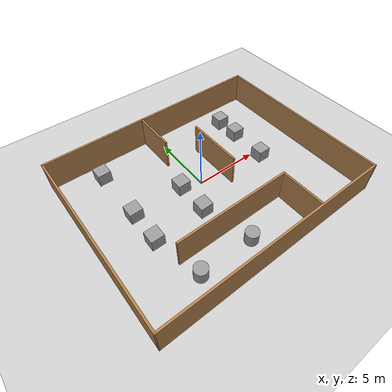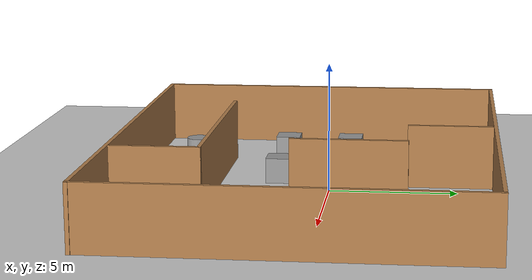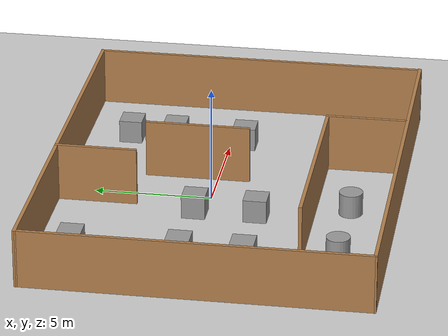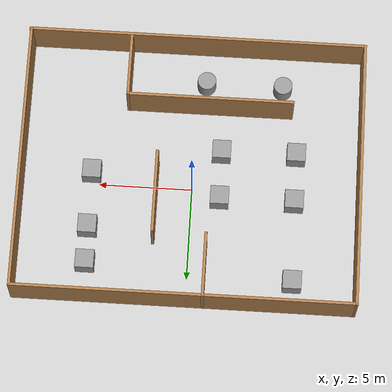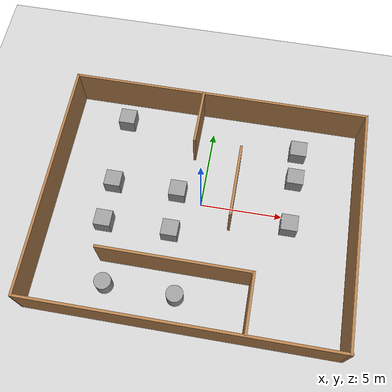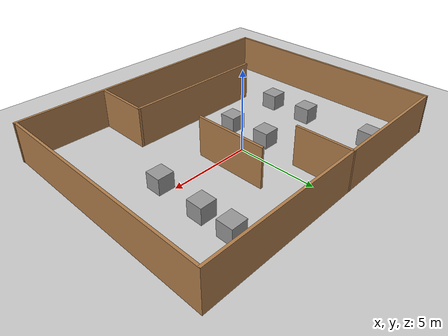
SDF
<sdf version="1.5">
 <world name="default">
  <light name="sun" type="directional">
   <pose>0 0 10 0 -0 0</pose>
   <diffuse>0.8 0.8 0.8 1</diffuse>
   <specular>0.2 0.2 0.2 1</specular>
   <attenuation>
    <range>1000</range>
    <constant>0.9</constant>
    <linear>0.01</linear>
    <quadratic>0.001</quadratic>
   </attenuation>
   <direction>-0.5 0.1 -0.9</direction>
   <spot><inner_angle>0</inner_angle><outer_angle>0</outer_angle><falloff>0</falloff></spot>
  </light>
  <model name="ground_plane">
   <static>1</static>
   <link name="link">
    <collision name="collision">
     <geometry><plane><normal>0 0 1</normal><size>100 100</size></plane></geometry>
     <surface>
      <contact><collide_bitmask>65535</collide_bitmask></contact>
      <friction><ode><mu>100</mu><mu2>50</mu2></ode></friction>
     </surface>
    </collision>
    <visual name="visual">
     <cast_shadows>0</cast_shadows>
     <geometry><plane><normal>0 0 1</normal><size>100 100</size></plane></geometry>
     <material>
      <script><uri>file://media/materials/scripts/gazebo.material</uri><name>Gazebo/Grey</name></script>
     </material>
    </visual>
   </link>
  </model>
  <gravity>0 0 -9.8</gravity>
  <magnetic_field>6e-06 2.3e-05 -4.2e-05</magnetic_field>
  <atmosphere type="adiabatic"/>
  <physics type="ode">
   <max_step_size>0.001</max_step_size>
   <real_time_factor>1</real_time_factor>
   <real_time_update_rate>1000</real_time_update_rate>
  </physics>
  <scene><ambient>0.4 0.4 0.4 1</ambient><background>0.7 0.7 0.7 1</background><shadows>1</shadows></scene>
  <audio><device>default</device></audio>
  <spherical_coordinates>
   <surface_model>EARTH_WGS84</surface_model>
   <latitude_deg>0</latitude_deg>
   <longitude_deg>0</longitude_deg>
   <elevation>0</elevation>
   <heading_deg>0</heading_deg>
  </spherical_coordinates>
  <model name="warehouse">
   <pose>0.120116 -0.7263 0 0 -0 0</pose>
   <link name="Wall_0">
    <collision name="Wall_0_Collision">
     <geometry><box><size>18.25 0.15 2.5</size></box></geometry>
     <pose>0 0 1.25 0 -0 0</pose>
    </collision>
    <visual name="Wall_0_Visual">
     <pose>0 0 1.25 0 -0 0</pose>
     <geometry><box><size>18.25 0.15 2.5</size></box></geometry>
     <material>
      <script><uri>file://media/materials/scripts/gazebo.material</uri><name>Gazebo/Wood</name></script>
      <ambient>1 1 1 1</ambient>
     </material>
     <meta><layer>0</layer></meta>
    </visual>
    <pose>0.015375 -7.17621 0 0 -0 0</pose>
   </link>
   <link name="Wall_11">
    <collision name="Wall_11_Collision">
     <geometry><box><size>3.5 0.15 2.5</size></box></geometry>
     <pose>0 0 1.25 0 -0 0</pose>
    </collision>
    <visual name="Wall_11_Visual">
     <pose>0 0 1.25 0 -0 0</pose>
     <geometry><box><size>3.5 0.15 2.5</size></box></geometry>
     <material>
      <script><uri>file://media/materials/scripts/gazebo.material</uri><name>Gazebo/Wood</name></script>
      <ambient>1 1 1 1</ambient>
     </material>
     <meta><layer>0</layer></meta>
    </visual>
    <pose>3.57683 -5.40442 0 0 -0 -1.5708</pose>
   </link>
   <link name="Wall_16">
    <collision name="Wall_16_Collision">
     <geometry><box><size>4.5 0.15 2.5</size></box></geometry>
     <pose>0 0 1.25 0 -0 0</pose>
    </collision>
    <visual name="Wall_16_Visual">
     <pose>0 0 1.25 0 -0 0</pose>
     <geometry><box><size>4.5 0.15 2.5</size></box></geometry>
     <material>
      <script><uri>file://media/materials/scripts/gazebo.material</uri><name>Gazebo/Wood</name></script>
      <ambient>1 1 1 1</ambient>
     </material>
     <meta><layer>0</layer></meta>
    </visual>
    <pose>1.78983 1.62078 0 0 -0 -1.5708</pose>
   </link>
   <link name="Wall_18">
    <collision name="Wall_18_Collision">
     <geometry><box><size>3.5 0.15 2.5</size></box></geometry>
     <pose>0 0 1.25 0 -0 0</pose>
    </collision>
    <visual name="Wall_18_Visual">
     <pose>0 0 1.25 0 -0 0</pose>
     <geometry><box><size>3.5 0.15 2.5</size></box></geometry>
     <material>
      <script><uri>file://media/materials/scripts/gazebo.material</uri><name>Gazebo/Wood</name></script>
      <ambient>1 1 1 1</ambient>
     </material>
     <meta><layer>0</layer></meta>
    </visual>
    <pose>-1.04229 5.50137 0 0 -0 1.5708</pose>
   </link>
   <link name="Wall_2">
    <collision name="Wall_2_Collision">
     <geometry><box><size>14.5 0.15 2.5</size></box></geometry>
     <pose>0 0 1.25 0 -0 0</pose>
    </collision>
    <visual name="Wall_2_Visual">
     <pose>0 0 1.25 0 -0 0</pose>
     <geometry><box><size>14.5 0.15 2.5</size></box></geometry>
     <material>
      <script><uri>file://media/materials/scripts/gazebo.material</uri><name>Gazebo/Wood</name></script>
      <ambient>1 1 1 1</ambient>
     </material>
     <meta><layer>0</layer></meta>
    </visual>
    <pose>-9.04992 -0.001211 0 0 -0 1.57293</pose>
   </link>
   <link name="Wall_3">
    <collision name="Wall_3_Collision">
     <geometry><box><size>18.25 0.15 2.5</size></box></geometry>
     <pose>0 0 1.25 0 -0 0</pose>
    </collision>
    <visual name="Wall_3_Visual">
     <pose>0 0 1.25 0 -0 0</pose>
     <geometry><box><size>18.25 0.15 2.5</size></box></geometry>
     <material>
      <script><uri>file://media/materials/scripts/gazebo.material</uri><name>Gazebo/Wood</name></script>
      <ambient>1 1 1 1</ambient>
     </material>
     <meta><layer>0</layer></meta>
    </visual>
    <pose>-0.015215 7.17379 0 0 -0 0</pose>
   </link>
   <link name="Wall_5">
    <collision name="Wall_5_Collision">
     <geometry><box><size>14.5 0.15 2.5</size></box></geometry>
     <pose>0 0 1.25 0 -0 0</pose>
    </collision>
    <visual name="Wall_5_Visual">
     <pose>0 0 1.25 0 -0 0</pose>
     <geometry><box><size>14.5 0.15 2.5</size></box></geometry>
     <material>
      <script><uri>file://media/materials/scripts/gazebo.material</uri><name>Gazebo/Wood</name></script>
      <ambient>1 1 1 1</ambient>
     </material>
     <meta><layer>0</layer></meta>
    </visual>
    <pose>9.03478 -0.001211 0 0 -0 -1.5708</pose>
   </link>
   <link name="Wall_9">
    <collision name="Wall_9_Collision">
     <geometry><box><size>9 0.15 2.5</size></box></geometry>
     <pose>0 0 1.25 0 -0 0</pose>
    </collision>
    <visual name="Wall_9_Visual">
     <pose>0 0 1.25 0 -0 0</pose>
     <geometry><box><size>9 0.15 2.5</size></box></geometry>
     <material>
      <script><uri>file://media/materials/scripts/gazebo.material</uri><name>Gazebo/Wood</name></script>
      <ambient>1 1 1 1</ambient>
     </material>
     <meta><layer>0</layer></meta>
    </visual>
    <pose>-0.848165 -3.72941 0 0 -0 3.14159</pose>
   </link>
   <static>1</static>
  </model>
  <model name="unit_box">
   <pose>-5.5115 0.460586 0.499995 0 1e-05 0</pose>
   <link name="link">
    <inertial>
     <mass>1</mass>
     <inertia>
      <ixx>0.166667</ixx>
      <ixy>0</ixy>
      <ixz>0</ixz>
      <iyy>0.166667</iyy>
      <iyz>0</iyz>
      <izz>0.166667</izz>
     </inertia>
    </inertial>
    <collision name="collision"><geometry><box><size>1 1 1</size></box></geometry></collision>
    <visual name="visual">
     <geometry><box><size>1 1 1</size></box></geometry>
     <material>
      <script><name>Gazebo/Grey</name><uri>file://media/materials/scripts/gazebo.material</uri></script>
     </material>
    </visual>
   </link>
  </model>
  <model name="unit_box_0">
   <pose>-5.50865 -2.17598 0.499995 -1e-05 -0 -0</pose>
   <link name="link">
    <inertial>
     <mass>1</mass>
     <inertia>
      <ixx>0.166667</ixx>
      <ixy>0</ixy>
      <ixz>0</ixz>
      <iyy>0.166667</iyy>
      <iyz>0</iyz>
      <izz>0.166667</izz>
     </inertia>
    </inertial>
    <collision name="collision"><geometry><box><size>1 1 1</size></box></geometry></collision>
    <visual name="visual">
     <geometry><box><size>1 1 1</size></box></geometry>
     <material>
      <script><name>Gazebo/Grey</name><uri>file://media/materials/scripts/gazebo.material</uri></script>
     </material>
    </visual>
   </link>
  </model>
  <model name="unit_box_1">
   <pose>-1.51022 0.466397 0.499995 0 1e-05 0</pose>
   <link name="link">
    <inertial>
     <mass>1</mass>
     <inertia>
      <ixx>0.166667</ixx>
      <ixy>0</ixy>
      <ixz>0</ixz>
      <iyy>0.166667</iyy>
      <iyz>0</iyz>
      <izz>0.166667</izz>
     </inertia>
    </inertial>
    <collision name="collision"><geometry><box><size>1 1 1</size></box></geometry></collision>
    <visual name="visual">
     <geometry><box><size>1 1 1</size></box></geometry>
     <material>
      <script><name>Gazebo/Grey</name><uri>file://media/materials/scripts/gazebo.material</uri></script>
     </material>
    </visual>
   </link>
  </model>
  <model name="unit_box_2">
   <pose>-1.4872 -2.12405 0.499995 -1e-05 -0 -0</pose>
   <link name="link">
    <inertial>
     <mass>1</mass>
     <inertia>
      <ixx>0.166667</ixx>
      <ixy>0</ixy>
      <ixz>0</ixz>
      <iyy>0.166667</iyy>
      <iyz>0</iyz>
      <izz>0.166667</izz>
     </inertia>
    </inertial>
    <collision name="collision"><geometry><box><size>1 1 1</size></box></geometry></collision>
    <visual name="visual">
     <geometry><box><size>1 1 1</size></box></geometry>
     <material>
      <script><name>Gazebo/Grey</name><uri>file://media/materials/scripts/gazebo.material</uri></script>
     </material>
    </visual>
   </link>
  </model>
  <model name="unit_box_3">
   <pose>5.43558 4.41141 0.499995 0 1e-05 0</pose>
   <link name="link">
    <inertial>
     <mass>1</mass>
     <inertia>
      <ixx>0.166667</ixx>
      <ixy>0</ixy>
      <ixz>0</ixz>
      <iyy>0.166667</iyy>
      <iyz>0</iyz>
      <izz>0.166667</izz>
     </inertia>
    </inertial>
    <collision name="collision"><geometry><box><size>1 1 1</size></box></geometry></collision>
    <visual name="visual">
     <geometry><box><size>1 1 1</size></box></geometry>
     <material>
      <script><name>Gazebo/Grey</name><uri>file://media/materials/scripts/gazebo.material</uri></script>
     </material>
    </visual>
   </link>
  </model>
  <model name="unit_box_4">
   <pose>5.44363 2.45798 0.499995 -1e-05 -0 -0</pose>
   <link name="link">
    <inertial>
     <mass>1</mass>
     <inertia>
      <ixx>0.166667</ixx>
      <ixy>0</ixy>
      <ixz>0</ixz>
      <iyy>0.166667</iyy>
      <iyz>0</iyz>
      <izz>0.166667</izz>
     </inertia>
    </inertial>
    <collision name="collision"><geometry><box><size>1 1 1</size></box></geometry></collision>
    <visual name="visual">
     <geometry><box><size>1 1 1</size></box></geometry>
     <material>
      <script><name>Gazebo/Grey</name><uri>file://media/materials/scripts/gazebo.material</uri></script>
     </material>
    </visual>
   </link>
  </model>
  <model name="unit_box_5">
   <pose>5.41986 -0.624343 0.499995 0 1e-05 0</pose>
   <link name="link">
    <inertial>
     <mass>1</mass>
     <inertia>
      <ixx>0.166667</ixx>
      <ixy>0</ixy>
      <ixz>0</ixz>
      <iyy>0.166667</iyy>
      <iyz>0</iyz>
      <izz>0.166667</izz>
     </inertia>
    </inertial>
    <collision name="collision"><geometry><box><size>1 1 1</size></box></geometry></collision>
    <visual name="visual">
     <geometry><box><size>1 1 1</size></box></geometry>
     <material>
      <script><name>Gazebo/Grey</name><uri>file://media/materials/scripts/gazebo.material</uri></script>
     </material>
    </visual>
   </link>
  </model>
  <model name="unit_cylinder_0">
   <pose>-4.61846 -5.94302 0.499997 3e-06 4e-06 -0</pose>
   <link name="link">
    <inertial>
     <mass>1</mass>
     <inertia><ixx>0.145833</ixx><ixy>0</ixy><ixz>0</ixz><iyy>0.145833</iyy><iyz>0</iyz><izz>0.125</izz></inertia>
    </inertial>
    <collision name="collision">
     <geometry><cylinder><radius>0.5</radius><length>1</length></cylinder></geometry>
    </collision>
    <visual name="visual">
     <geometry><cylinder><radius>0.5</radius><length>1</length></cylinder></geometry>
     <material>
      <script><name>Gazebo/Grey</name><uri>file://media/materials/scripts/gazebo.material</uri></script>
     </material>
    </visual>
   </link>
  </model>
  <model name="unit_cylinder_1">
   <pose>-0.473601 -5.98243 0.499993 -3e-06 -4e-06 -0</pose>
   <link name="link">
    <inertial>
     <mass>1</mass>
     <inertia><ixx>0.145833</ixx><ixy>0</ixy><ixz>0</ixz><iyy>0.145833</iyy><iyz>0</iyz><izz>0.125</izz></inertia>
    </inertial>
    <collision name="collision">
     <geometry><cylinder><radius>0.5</radius><length>1</length></cylinder></geometry>
    </collision>
    <visual name="visual">
     <geometry><cylinder><radius>0.5</radius><length>1</length></cylinder></geometry>
     <material>
      <script><name>Gazebo/Grey</name><uri>file://media/materials/scripts/gazebo.material</uri></script>
     </material>
    </visual>
   </link>
  </model>
  <model name="unit_box_6">
   <pose>-5.58668 4.91879 0.5 0 -0 0</pose>
   <link name="link">
    <inertial>
     <mass>1</mass>
     <inertia>
      <ixx>0.166667</ixx>
      <ixy>0</ixy>
      <ixz>0</ixz>
      <iyy>0.166667</iyy>
      <iyz>0</iyz>
      <izz>0.166667</izz>
     </inertia>
    </inertial>
    <collision name="collision"><geometry><box><size>1 1 1</size></box></geometry></collision>
    <visual name="visual">
     <geometry><box><size>1 1 1</size></box></geometry>
     <material>
      <script><name>Gazebo/Grey</name><uri>file://media/materials/scripts/gazebo.material</uri></script>
     </material>
    </visual>
   </link>
  </model>
 </world>
</sdf>
